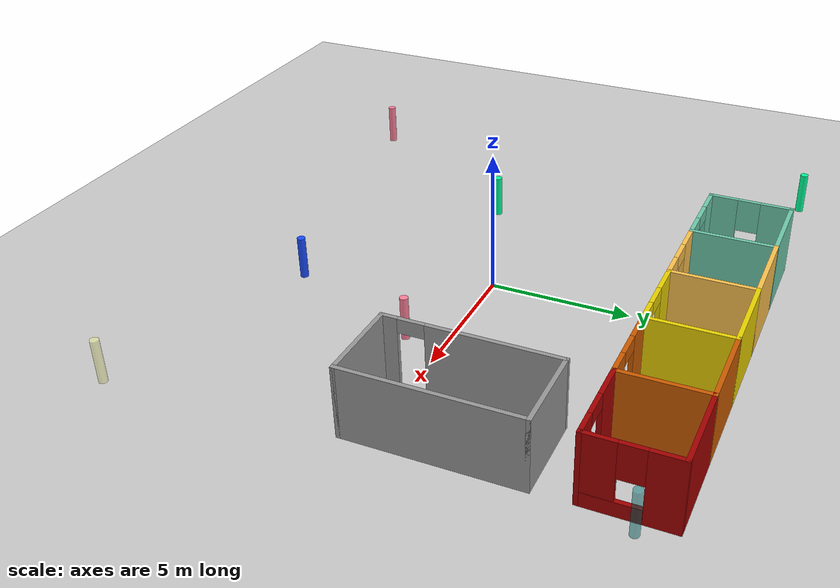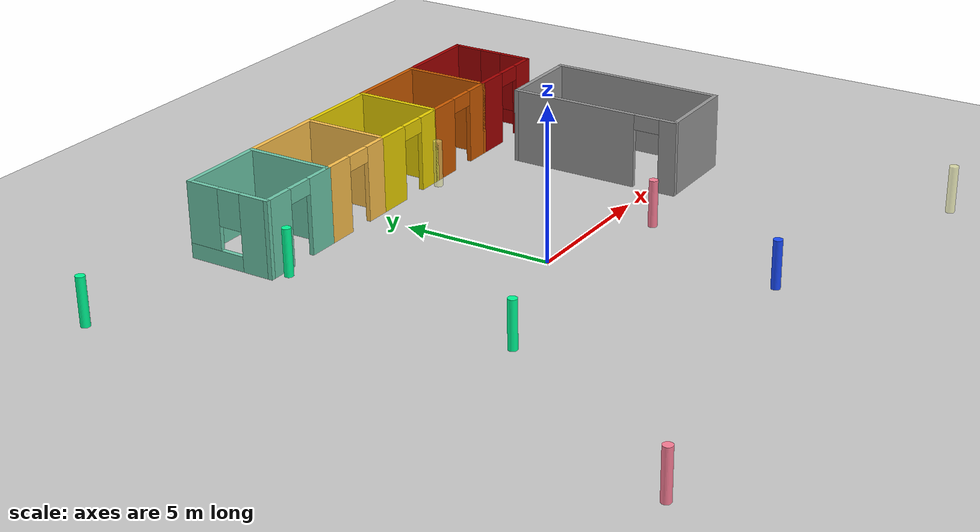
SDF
<sdf version="1.6">
 <world name="default">
  <model name="ground_plane">
   <static>1</static>
   <link name="link">
    <collision name="collision">
     <geometry><plane><normal>0 0 1</normal><size>100 100</size></plane></geometry>
     <surface><friction><ode><mu>100</mu><mu2>50</mu2></ode></friction></surface>
    </collision>
    <visual name="visual">
     <cast_shadows>0</cast_shadows>
     <geometry><plane><normal>0 0 1</normal><size>100 100</size></plane></geometry>
     <material>
      <script><uri>file://media/materials/scripts/gazebo.material</uri><name>Gazebo/Grey</name></script>
     </material>
    </visual>
   </link>
  </model>
  <model name="office_4">
   <pose>2.07237 8.39329 0 0 -0 0</pose>
   <link name="Wall_0">
    <collision name="Wall_0_Collision">
     <geometry><box><size>3 0.15 2.5</size></box></geometry>
     <pose>0 0 1.25 0 -0 0</pose>
    </collision>
    <visual name="Wall_0_Visual">
     <pose>0 0 1.25 0 -0 0</pose>
     <geometry><box><size>3 0.15 2.5</size></box></geometry>
     <material>
      <script><uri>file://media/materials/scripts/gazebo.material</uri><name>Gazebo/Grey</name></script>
      <ambient>0.435294 0.796078 0.67451 1</ambient>
     </material>
     <meta><layer>0</layer></meta>
    </visual>
    <pose>-5.7 0.8025 0 0 -0 0</pose>
   </link>
   <link name="Wall_1">
    <collision name="Wall_1_Collision">
     <geometry><box><size>3 0.15 2.5</size></box></geometry>
     <pose>0 0 1.25 0 -0 0</pose>
    </collision>
    <visual name="Wall_1_Visual">
     <pose>0 0 1.25 0 -0 0</pose>
     <geometry><box><size>3 0.15 2.5</size></box></geometry>
     <material>
      <script><uri>file://media/materials/scripts/gazebo.material</uri><name>Gazebo/Grey</name></script>
      <ambient>0.435294 0.796078 0.67451 1</ambient>
     </material>
     <meta><layer>0</layer></meta>
    </visual>
    <pose>-4.275 -0.6225 0 0 -0 -1.5708</pose>
   </link>
   <link name="Wall_10">
    <pose>5.7 -2.0475 0 0 -0 3.14159</pose>
    <visual name="Wall_10_Visual_0">
     <pose>-1.06469 0 1.25 0 -0 0</pose>
     <geometry><box><size>0.870623 0.15 2.5</size></box></geometry>
     <material>
      <script><uri>file://media/materials/scripts/gazebo.material</uri><name>Gazebo/Grey</name></script>
      <ambient>0.643137 0 0 1</ambient>
     </material>
     <meta><layer>0</layer></meta>
    </visual>
    <collision name="Wall_10_Collision_0">
     <geometry><box><size>0.870623 0.15 2.5</size></box></geometry>
     <pose>-1.06469 0 1.25 0 -0 0</pose>
    </collision>
    <visual name="Wall_10_Visual_1">
     <pose>0.885312 0 1.25 0 -0 0</pose>
     <geometry><box><size>1.22938 0.15 2.5</size></box></geometry>
     <material>
      <script><uri>file://media/materials/scripts/gazebo.material</uri><name>Gazebo/Grey</name></script>
      <ambient>0.643137 0 0 1</ambient>
     </material>
     <meta><layer>0</layer></meta>
    </visual>
    <collision name="Wall_10_Collision_1">
     <geometry><box><size>1.22938 0.15 2.5</size></box></geometry>
     <pose>0.885312 0 1.25 0 -0 0</pose>
    </collision>
    <visual name="Wall_10_Visual_2">
     <pose>-0.179377 0 2.25 0 -0 0</pose>
     <geometry><box><size>0.9 0.15 0.5</size></box></geometry>
     <material>
      <script><uri>file://media/materials/scripts/gazebo.material</uri><name>Gazebo/Grey</name></script>
      <ambient>0.643137 0 0 1</ambient>
     </material>
     <meta><layer>0</layer></meta>
    </visual>
    <collision name="Wall_10_Collision_2">
     <geometry><box><size>0.9 0.15 0.5</size></box></geometry>
     <pose>-0.179377 0 2.25 0 -0 0</pose>
    </collision>
   </link>
   <link name="Wall_12">
    <pose>0 -2.0475 0 0 -0 0</pose>
    <visual name="Wall_12_Visual_0">
     <pose>-0.909766 0 1.25 0 -0 0</pose>
     <geometry><box><size>1.18047 0.15 2.5</size></box></geometry>
     <material>
      <script><uri>file://media/materials/scripts/gazebo.material</uri><name>Gazebo/Grey</name></script>
      <ambient>0.929412 0.831373 0 1</ambient>
     </material>
     <meta><layer>0</layer></meta>
    </visual>
    <collision name="Wall_12_Collision_0">
     <geometry><box><size>1.18047 0.15 2.5</size></box></geometry>
     <pose>-0.909766 0 1.25 0 -0 0</pose>
    </collision>
    <visual name="Wall_12_Visual_1">
     <pose>1.04023 0 1.25 0 -0 0</pose>
     <geometry><box><size>0.919531 0.15 2.5</size></box></geometry>
     <material>
      <script><uri>file://media/materials/scripts/gazebo.material</uri><name>Gazebo/Grey</name></script>
      <ambient>0.929412 0.831373 0 1</ambient>
     </material>
     <meta><layer>0</layer></meta>
    </visual>
    <collision name="Wall_12_Collision_1">
     <geometry><box><size>0.919531 0.15 2.5</size></box></geometry>
     <pose>1.04023 0 1.25 0 -0 0</pose>
    </collision>
    <visual name="Wall_12_Visual_2">
     <pose>0.130469 0 2.25 0 -0 0</pose>
     <geometry><box><size>0.9 0.15 0.5</size></box></geometry>
     <material>
      <script><uri>file://media/materials/scripts/gazebo.material</uri><name>Gazebo/Grey</name></script>
      <ambient>0.929412 0.831373 0 1</ambient>
     </material>
     <meta><layer>0</layer></meta>
    </visual>
    <collision name="Wall_12_Collision_2">
     <geometry><box><size>0.9 0.15 0.5</size></box></geometry>
     <pose>0.130469 0 2.25 0 -0 0</pose>
    </collision>
   </link>
   <link name="Wall_14">
    <collision name="Wall_14_Collision">
     <geometry><box><size>3 0.15 2.5</size></box></geometry>
     <pose>0 0 1.25 0 -0 0</pose>
    </collision>
    <visual name="Wall_14_Visual">
     <pose>0 0 1.25 0 -0 0</pose>
     <geometry><box><size>3 0.15 2.5</size></box></geometry>
     <material>
      <script><uri>file://media/materials/scripts/gazebo.material</uri><name>Gazebo/Grey</name></script>
      <ambient>0.807843 0.360784 0 1</ambient>
     </material>
     <meta><layer>0</layer></meta>
    </visual>
    <pose>2.85 0.8025 0 0 -0 0</pose>
   </link>
   <link name="Wall_16">
    <collision name="Wall_16_Collision">
     <geometry><box><size>3 0.15 2.5</size></box></geometry>
     <pose>0 0 1.25 0 -0 0</pose>
    </collision>
    <visual name="Wall_16_Visual">
     <pose>0 0 1.25 0 -0 0</pose>
     <geometry><box><size>3 0.15 2.5</size></box></geometry>
     <material>
      <script><uri>file://media/materials/scripts/gazebo.material</uri><name>Gazebo/Grey</name></script>
      <ambient>1 0.764706 0.305882 1</ambient>
     </material>
     <meta><layer>0</layer></meta>
    </visual>
    <pose>-2.85 0.8025 0 0 -0 0</pose>
   </link>
   <link name="Wall_18">
    <pose>-5.7 -2.0475 0 0 -0 3.14159</pose>
    <visual name="Wall_18_Visual_0">
     <pose>-0.992968 0 1.25 0 -0 0</pose>
     <geometry><box><size>1.01406 0.15 2.5</size></box></geometry>
     <material>
      <script><uri>file://media/materials/scripts/gazebo.material</uri><name>Gazebo/Grey</name></script>
      <ambient>0.435294 0.796078 0.67451 1</ambient>
     </material>
     <meta><layer>0</layer></meta>
    </visual>
    <collision name="Wall_18_Collision_0">
     <geometry><box><size>1.01406 0.15 2.5</size></box></geometry>
     <pose>-0.992968 0 1.25 0 -0 0</pose>
    </collision>
    <visual name="Wall_18_Visual_1">
     <pose>0.957032 0 1.25 0 -0 0</pose>
     <geometry><box><size>1.08594 0.15 2.5</size></box></geometry>
     <material>
      <script><uri>file://media/materials/scripts/gazebo.material</uri><name>Gazebo/Grey</name></script>
      <ambient>0.435294 0.796078 0.67451 1</ambient>
     </material>
     <meta><layer>0</layer></meta>
    </visual>
    <collision name="Wall_18_Collision_1">
     <geometry><box><size>1.08594 0.15 2.5</size></box></geometry>
     <pose>0.957032 0 1.25 0 -0 0</pose>
    </collision>
    <visual name="Wall_18_Visual_2">
     <pose>-0.035935 0 2.25 0 -0 0</pose>
     <geometry><box><size>0.9 0.15 0.5</size></box></geometry>
     <material>
      <script><uri>file://media/materials/scripts/gazebo.material</uri><name>Gazebo/Grey</name></script>
      <ambient>0.435294 0.796078 0.67451 1</ambient>
     </material>
     <meta><layer>0</layer></meta>
    </visual>
    <collision name="Wall_18_Collision_2">
     <geometry><box><size>0.9 0.15 0.5</size></box></geometry>
     <pose>-0.035935 0 2.25 0 -0 0</pose>
    </collision>
   </link>
   <link name="Wall_19">
    <pose>-7.125 -0.6225 0 0 -0 1.5708</pose>
    <visual name="Wall_19_Visual_0">
     <pose>-0.974081 0 1.25 0 -0 0</pose>
     <geometry><box><size>1.05184 0.15 2.5</size></box></geometry>
     <material>
      <script><uri>file://media/materials/scripts/gazebo.material</uri><name>Gazebo/Grey</name></script>
      <ambient>0.435294 0.796078 0.67451 1</ambient>
     </material>
     <meta><layer>0</layer></meta>
    </visual>
    <collision name="Wall_19_Collision_0">
     <geometry><box><size>1.05184 0.15 2.5</size></box></geometry>
     <pose>-0.974081 0 1.25 0 -0 0</pose>
    </collision>
    <visual name="Wall_19_Visual_1">
     <pose>0.525919 0 0.25 0 -0 0</pose>
     <geometry><box><size>1.94816 0.15 0.5</size></box></geometry>
     <material>
      <script><uri>file://media/materials/scripts/gazebo.material</uri><name>Gazebo/Grey</name></script>
      <ambient>0.435294 0.796078 0.67451 1</ambient>
     </material>
     <meta><layer>0</layer></meta>
    </visual>
    <collision name="Wall_19_Collision_1">
     <geometry><box><size>1.94816 0.15 0.5</size></box></geometry>
     <pose>0.525919 0 0.25 0 -0 0</pose>
    </collision>
    <visual name="Wall_19_Visual_2">
     <pose>0.925919 0 1.5 0 -0 0</pose>
     <geometry><box><size>1.14816 0.15 2</size></box></geometry>
     <material>
      <script><uri>file://media/materials/scripts/gazebo.material</uri><name>Gazebo/Grey</name></script>
      <ambient>0.435294 0.796078 0.67451 1</ambient>
     </material>
     <meta><layer>0</layer></meta>
    </visual>
    <collision name="Wall_19_Collision_2">
     <geometry><box><size>1.14816 0.15 2</size></box></geometry>
     <pose>0.925919 0 1.5 0 -0 0</pose>
    </collision>
    <visual name="Wall_19_Visual_3">
     <pose>-0.048161 0 1.9 0 -0 0</pose>
     <geometry><box><size>0.8 0.15 1.2</size></box></geometry>
     <material>
      <script><uri>file://media/materials/scripts/gazebo.material</uri><name>Gazebo/Grey</name></script>
      <ambient>0.435294 0.796078 0.67451 1</ambient>
     </material>
     <meta><layer>0</layer></meta>
    </visual>
    <collision name="Wall_19_Collision_3">
     <geometry><box><size>0.8 0.15 1.2</size></box></geometry>
     <pose>-0.048161 0 1.9 0 -0 0</pose>
    </collision>
   </link>
   <link name="Wall_2">
    <pose>-2.85 -2.0475 0 0 -0 0</pose>
    <visual name="Wall_2_Visual_0">
     <pose>-0.937201 0 1.25 0 -0 0</pose>
     <geometry><box><size>1.1256 0.15 2.5</size></box></geometry>
     <material>
      <script><uri>file://media/materials/scripts/gazebo.material</uri><name>Gazebo/Grey</name></script>
      <ambient>1 0.764706 0.305882 1</ambient>
     </material>
     <meta><layer>0</layer></meta>
    </visual>
    <collision name="Wall_2_Collision_0">
     <geometry><box><size>1.1256 0.15 2.5</size></box></geometry>
     <pose>-0.937201 0 1.25 0 -0 0</pose>
    </collision>
    <visual name="Wall_2_Visual_1">
     <pose>1.0128 0 1.25 0 -0 0</pose>
     <geometry><box><size>0.974402 0.15 2.5</size></box></geometry>
     <material>
      <script><uri>file://media/materials/scripts/gazebo.material</uri><name>Gazebo/Grey</name></script>
      <ambient>1 0.764706 0.305882 1</ambient>
     </material>
     <meta><layer>0</layer></meta>
    </visual>
    <collision name="Wall_2_Collision_1">
     <geometry><box><size>0.974402 0.15 2.5</size></box></geometry>
     <pose>1.0128 0 1.25 0 -0 0</pose>
    </collision>
    <visual name="Wall_2_Visual_2">
     <pose>0.075598 0 2.25 0 -0 0</pose>
     <geometry><box><size>0.9 0.15 0.5</size></box></geometry>
     <material>
      <script><uri>file://media/materials/scripts/gazebo.material</uri><name>Gazebo/Grey</name></script>
      <ambient>1 0.764706 0.305882 1</ambient>
     </material>
     <meta><layer>0</layer></meta>
    </visual>
    <collision name="Wall_2_Collision_2">
     <geometry><box><size>0.9 0.15 0.5</size></box></geometry>
     <pose>0.075598 0 2.25 0 -0 0</pose>
    </collision>
   </link>
   <link name="Wall_3">
    <collision name="Wall_3_Collision">
     <geometry><box><size>3 0.15 2.5</size></box></geometry>
     <pose>0 0 1.25 0 -0 0</pose>
    </collision>
    <visual name="Wall_3_Visual">
     <pose>0 0 1.25 0 -0 0</pose>
     <geometry><box><size>3 0.15 2.5</size></box></geometry>
     <material>
      <script><uri>file://media/materials/scripts/gazebo.material</uri><name>Gazebo/Grey</name></script>
      <ambient>1 0.764706 0.305882 1</ambient>
     </material>
     <meta><layer>0</layer></meta>
    </visual>
    <pose>-1.425 -0.6225 0 0 -0 1.5708</pose>
   </link>
   <link name="Wall_4">
    <collision name="Wall_4_Collision">
     <geometry><box><size>3 0.15 2.5</size></box></geometry>
     <pose>0 0 1.25 0 -0 0</pose>
    </collision>
    <visual name="Wall_4_Visual">
     <pose>0 0 1.25 0 -0 0</pose>
     <geometry><box><size>3 0.15 2.5</size></box></geometry>
     <material>
      <script><uri>file://media/materials/scripts/gazebo.material</uri><name>Gazebo/Grey</name></script>
      <ambient>0.929412 0.831373 0 1</ambient>
     </material>
     <meta><layer>0</layer></meta>
    </visual>
    <pose>0 0.8025 0 0 -0 0</pose>
   </link>
   <link name="Wall_5">
    <collision name="Wall_5_Collision">
     <geometry><box><size>3 0.15 2.5</size></box></geometry>
     <pose>0 0 1.25 0 -0 0</pose>
    </collision>
    <visual name="Wall_5_Visual">
     <pose>0 0 1.25 0 -0 0</pose>
     <geometry><box><size>3 0.15 2.5</size></box></geometry>
     <material>
      <script><uri>file://media/materials/scripts/gazebo.material</uri><name>Gazebo/Grey</name></script>
      <ambient>0.929412 0.831373 0 1</ambient>
     </material>
     <meta><layer>0</layer></meta>
    </visual>
    <pose>1.425 -0.6225 0 0 -0 -1.5708</pose>
   </link>
   <link name="Wall_6">
    <pose>2.85 -2.0475 0 0 -0 0</pose>
    <visual name="Wall_6_Visual_0">
     <pose>-0.920352 0 1.25 0 -0 0</pose>
     <geometry><box><size>1.1593 0.15 2.5</size></box></geometry>
     <material>
      <script><uri>file://media/materials/scripts/gazebo.material</uri><name>Gazebo/Grey</name></script>
      <ambient>0.807843 0.360784 0 1</ambient>
     </material>
     <meta><layer>0</layer></meta>
    </visual>
    <collision name="Wall_6_Collision_0">
     <geometry><box><size>1.1593 0.15 2.5</size></box></geometry>
     <pose>-0.920352 0 1.25 0 -0 0</pose>
    </collision>
    <visual name="Wall_6_Visual_1">
     <pose>1.02965 0 1.25 0 -0 0</pose>
     <geometry><box><size>0.940704 0.15 2.5</size></box></geometry>
     <material>
      <script><uri>file://media/materials/scripts/gazebo.material</uri><name>Gazebo/Grey</name></script>
      <ambient>0.807843 0.360784 0 1</ambient>
     </material>
     <meta><layer>0</layer></meta>
    </visual>
    <collision name="Wall_6_Collision_1">
     <geometry><box><size>0.940704 0.15 2.5</size></box></geometry>
     <pose>1.02965 0 1.25 0 -0 0</pose>
    </collision>
    <visual name="Wall_6_Visual_2">
     <pose>0.109296 0 2.25 0 -0 0</pose>
     <geometry><box><size>0.9 0.15 0.5</size></box></geometry>
     <material>
      <script><uri>file://media/materials/scripts/gazebo.material</uri><name>Gazebo/Grey</name></script>
      <ambient>0.807843 0.360784 0 1</ambient>
     </material>
     <meta><layer>0</layer></meta>
    </visual>
    <collision name="Wall_6_Collision_2">
     <geometry><box><size>0.9 0.15 0.5</size></box></geometry>
     <pose>0.109296 0 2.25 0 -0 0</pose>
    </collision>
   </link>
   <link name="Wall_7">
    <collision name="Wall_7_Collision">
     <geometry><box><size>3 0.15 2.5</size></box></geometry>
     <pose>0 0 1.25 0 -0 0</pose>
    </collision>
    <visual name="Wall_7_Visual">
     <pose>0 0 1.25 0 -0 0</pose>
     <geometry><box><size>3 0.15 2.5</size></box></geometry>
     <material>
      <script><uri>file://media/materials/scripts/gazebo.material</uri><name>Gazebo/Grey</name></script>
      <ambient>0.807843 0.360784 0 1</ambient>
     </material>
     <meta><layer>0</layer></meta>
    </visual>
    <pose>4.275 -0.6225 0 0 -0 1.5708</pose>
   </link>
   <link name="Wall_8">
    <collision name="Wall_8_Collision">
     <geometry><box><size>3 0.15 2.5</size></box></geometry>
     <pose>0 0 1.25 0 -0 0</pose>
    </collision>
    <visual name="Wall_8_Visual">
     <pose>0 0 1.25 0 -0 0</pose>
     <geometry><box><size>3 0.15 2.5</size></box></geometry>
     <material>
      <script><uri>file://media/materials/scripts/gazebo.material</uri><name>Gazebo/Grey</name></script>
      <ambient>0.643137 0 0 1</ambient>
     </material>
     <meta><layer>0</layer></meta>
    </visual>
    <pose>5.7 0.8025 0 0 -0 0</pose>
   </link>
   <link name="Wall_9">
    <pose>7.125 -0.6225 0 0 -0 -1.5708</pose>
    <visual name="Wall_9_Visual_0">
     <pose>-0.956337 0 1.25 0 -0 0</pose>
     <geometry><box><size>1.08733 0.15 2.5</size></box></geometry>
     <material>
      <script><uri>file://media/materials/scripts/gazebo.material</uri><name>Gazebo/Grey</name></script>
      <ambient>0.643137 0 0 1</ambient>
     </material>
     <meta><layer>0</layer></meta>
    </visual>
    <collision name="Wall_9_Collision_0">
     <geometry><box><size>1.08733 0.15 2.5</size></box></geometry>
     <pose>-0.956337 0 1.25 0 -0 0</pose>
    </collision>
    <visual name="Wall_9_Visual_1">
     <pose>0.543663 0 0.25 0 -0 0</pose>
     <geometry><box><size>1.91267 0.15 0.5</size></box></geometry>
     <material>
      <script><uri>file://media/materials/scripts/gazebo.material</uri><name>Gazebo/Grey</name></script>
      <ambient>0.643137 0 0 1</ambient>
     </material>
     <meta><layer>0</layer></meta>
    </visual>
    <collision name="Wall_9_Collision_1">
     <geometry><box><size>1.91267 0.15 0.5</size></box></geometry>
     <pose>0.543663 0 0.25 0 -0 0</pose>
    </collision>
    <visual name="Wall_9_Visual_2">
     <pose>0.943663 0 1.5 0 -0 0</pose>
     <geometry><box><size>1.11267 0.15 2</size></box></geometry>
     <material>
      <script><uri>file://media/materials/scripts/gazebo.material</uri><name>Gazebo/Grey</name></script>
      <ambient>0.643137 0 0 1</ambient>
     </material>
     <meta><layer>0</layer></meta>
    </visual>
    <collision name="Wall_9_Collision_2">
     <geometry><box><size>1.11267 0.15 2</size></box></geometry>
     <pose>0.943663 0 1.5 0 -0 0</pose>
    </collision>
    <visual name="Wall_9_Visual_3">
     <pose>-0.012674 0 1.9 0 -0 0</pose>
     <geometry><box><size>0.8 0.15 1.2</size></box></geometry>
     <material>
      <script><uri>file://media/materials/scripts/gazebo.material</uri><name>Gazebo/Grey</name></script>
      <ambient>0.643137 0 0 1</ambient>
     </material>
     <meta><layer>0</layer></meta>
    </visual>
    <collision name="Wall_9_Collision_3">
     <geometry><box><size>0.8 0.15 1.2</size></box></geometry>
     <pose>-0.012674 0 1.9 0 -0 0</pose>
    </collision>
   </link>
   <static>1</static>
  </model>
  <model name="office2_1">
   <pose>7.1793 2.06075 0 0 -0 1.57282</pose>
   <link name="Wall_1">
    <collision name="Wall_1_Collision">
     <geometry><box><size>6 0.15 2.5</size></box></geometry>
     <pose>0 0 1.25 0 -0 0</pose>
    </collision>
    <visual name="Wall_1_Visual">
     <pose>0 0 1.25 0 -0 0</pose>
     <geometry><box><size>6 0.15 2.5</size></box></geometry>
     <material>
      <script><uri>file://media/materials/scripts/gazebo.material</uri><name>Gazebo/Grey</name></script>
      <ambient>1 1 1 1</ambient>
     </material>
     <meta><layer>0</layer></meta>
    </visual>
    <pose>0 -2.0825 0 0 -0 0</pose>
   </link>
   <link name="Wall_2">
    <collision name="Wall_2_Collision">
     <geometry><box><size>3 0.15 2.5</size></box></geometry>
     <pose>0 0 1.25 0 -0 0</pose>
    </collision>
    <visual name="Wall_2_Visual">
     <pose>0 0 1.25 0 -0 0</pose>
     <geometry><box><size>3 0.15 2.5</size></box></geometry>
     <material>
      <script><uri>file://media/materials/scripts/gazebo.material</uri><name>Gazebo/Grey</name></script>
      <ambient>1 1 1 1</ambient>
     </material>
     <meta><layer>0</layer></meta>
    </visual>
    <pose>2.925 -0.6575 0 0 -0 1.5708</pose>
   </link>
   <link name="Wall_3">
    <pose>0 0.7675 0 0 -0 3.14159</pose>
    <visual name="Wall_3_Visual_0">
     <pose>-0.7575 0 1.25 0 -0 0</pose>
     <geometry><box><size>4.485 0.15 2.5</size></box></geometry>
     <material>
      <script><uri>file://media/materials/scripts/gazebo.material</uri><name>Gazebo/Grey</name></script>
      <ambient>1 1 1 1</ambient>
     </material>
     <meta><layer>0</layer></meta>
    </visual>
    <collision name="Wall_3_Collision_0">
     <geometry><box><size>4.485 0.15 2.5</size></box></geometry>
     <pose>-0.7575 0 1.25 0 -0 0</pose>
    </collision>
    <visual name="Wall_3_Visual_1">
     <pose>2.6925 0 1.25 0 -0 0</pose>
     <geometry><box><size>0.615 0.15 2.5</size></box></geometry>
     <material>
      <script><uri>file://media/materials/scripts/gazebo.material</uri><name>Gazebo/Grey</name></script>
      <ambient>1 1 1 1</ambient>
     </material>
     <meta><layer>0</layer></meta>
    </visual>
    <collision name="Wall_3_Collision_1">
     <geometry><box><size>0.615 0.15 2.5</size></box></geometry>
     <pose>2.6925 0 1.25 0 -0 0</pose>
    </collision>
    <visual name="Wall_3_Visual_2">
     <pose>1.935 0 2.25 0 -0 0</pose>
     <geometry><box><size>0.9 0.15 0.5</size></box></geometry>
     <material>
      <script><uri>file://media/materials/scripts/gazebo.material</uri><name>Gazebo/Grey</name></script>
      <ambient>1 1 1 1</ambient>
     </material>
     <meta><layer>0</layer></meta>
    </visual>
    <collision name="Wall_3_Collision_2">
     <geometry><box><size>0.9 0.15 0.5</size></box></geometry>
     <pose>1.935 0 2.25 0 -0 0</pose>
    </collision>
   </link>
   <link name="Wall_4">
    <collision name="Wall_4_Collision">
     <geometry><box><size>3 0.15 2.5</size></box></geometry>
     <pose>0 0 1.25 0 -0 0</pose>
    </collision>
    <visual name="Wall_4_Visual">
     <pose>0 0 1.25 0 -0 0</pose>
     <geometry><box><size>3 0.15 2.5</size></box></geometry>
     <material>
      <script><uri>file://media/materials/scripts/gazebo.material</uri><name>Gazebo/Grey</name></script>
      <ambient>1 1 1 1</ambient>
     </material>
     <meta><layer>0</layer></meta>
    </visual>
    <pose>-2.925 -0.6575 0 0 -0 -1.5708</pose>
   </link>
   <static>1</static>
  </model>
  <model name="column">
   <link name="link">
    <pose>0.349547 -0.833341 0.176042 0 -0 0</pose>
    <inertial>
     <mass>0.145554</mass>
     <inertia>
      <ixx>0.0358698</ixx>
      <ixy>0</ixy>
      <ixz>0</ixz>
      <iyy>0.0358698</iyy>
      <iyz>0</iyz>
      <izz>0.00155704</izz>
     </inertia>
    </inertial>
    <visual name="visual">
     <geometry><cylinder><radius>0.146269</radius><length>1.7009</length></cylinder></geometry>
     <material>
      <script><name>Gazebo/Grey</name><uri>file://media/materials/scripts/gazebo.material</uri></script>
      <shader type="pixel"><normal_map>__default__</normal_map></shader>
      <ambient>1 0.5 0.6 1</ambient>
      <diffuse>0.7 0.7 0.7 1</diffuse>
      <specular>0.01 0.01 0.01 1</specular>
      <emissive>0 0 0 1</emissive>
     </material>
    </visual>
    <collision name="collision">
     <geometry><cylinder><radius>0.146269</radius><length>1.7009</length></cylinder></geometry>
     <surface>
      <friction>
       <ode><mu>1</mu><mu2>1</mu2><fdir1>0 0 0</fdir1><slip1>0</slip1><slip2>0</slip2></ode>
       <torsional>
        <coefficient>1</coefficient>
        <patch_radius>0</patch_radius>
        <surface_radius>0</surface_radius>
        <use_patch_radius>1</use_patch_radius>
        <ode><slip>0</slip></ode>
       </torsional>
      </friction>
      <bounce><restitution_coefficient>0</restitution_coefficient><threshold>1e+06</threshold></bounce>
      <contact>
       <collide_without_contact>0</collide_without_contact>
       <collide_without_contact_bitmask>1</collide_without_contact_bitmask>
       <collide_bitmask>1</collide_bitmask>
       <ode>
        <soft_cfm>0</soft_cfm>
        <soft_erp>0.2</soft_erp>
        <kp>1e+13</kp>
        <kd>1</kd>
        <max_vel>0.01</max_vel>
        <min_depth>0</min_depth>
       </ode>
       <bullet>
        <split_impulse>1</split_impulse>
        <split_impulse_penetration_threshold>-0.01</split_impulse_penetration_threshold>
        <soft_cfm>0</soft_cfm>
        <soft_erp>0.2</soft_erp>
        <kp>1e+13</kp>
        <kd>1</kd>
       </bullet>
      </contact>
     </surface>
    </collision>
   </link>
   <link name="link_clone">
    <pose>-8.75389 -1.38512 0.176042 0 -0 0</pose>
    <inertial>
     <mass>0.145554</mass>
     <inertia>
      <ixx>0.0358698</ixx>
      <ixy>0</ixy>
      <ixz>0</ixz>
      <iyy>0.0358698</iyy>
      <iyz>0</iyz>
      <izz>0.00155704</izz>
     </inertia>
    </inertial>
    <visual name="visual">
     <geometry><cylinder><radius>0.146269</radius><length>1.7009</length></cylinder></geometry>
     <material>
      <script><name>Gazebo/Grey</name><uri>file://media/materials/scripts/gazebo.material</uri></script>
      <shader type="pixel"><normal_map>__default__</normal_map></shader>
      <ambient>0 1 0.6 1</ambient>
      <diffuse>0.7 0.7 0.7 1</diffuse>
      <specular>0.01 0.01 0.01 1</specular>
      <emissive>0 0 0 1</emissive>
     </material>
    </visual>
    <collision name="collision">
     <geometry><cylinder><radius>0.146269</radius><length>1.7009</length></cylinder></geometry>
     <surface>
      <friction>
       <ode><mu>1</mu><mu2>1</mu2><fdir1>0 0 0</fdir1><slip1>0</slip1><slip2>0</slip2></ode>
       <torsional>
        <coefficient>1</coefficient>
        <patch_radius>0</patch_radius>
        <surface_radius>0</surface_radius>
        <use_patch_radius>1</use_patch_radius>
        <ode><slip>0</slip></ode>
       </torsional>
      </friction>
      <bounce><restitution_coefficient>0</restitution_coefficient><threshold>1e+06</threshold></bounce>
      <contact>
       <collide_without_contact>0</collide_without_contact>
       <collide_without_contact_bitmask>1</collide_without_contact_bitmask>
       <collide_bitmask>1</collide_bitmask>
       <ode>
        <soft_cfm>0</soft_cfm>
        <soft_erp>0.2</soft_erp>
        <kp>1e+13</kp>
        <kd>1</kd>
        <max_vel>0.01</max_vel>
        <min_depth>0</min_depth>
       </ode>
       <bullet>
        <split_impulse>1</split_impulse>
        <split_impulse_penetration_threshold>-0.01</split_impulse_penetration_threshold>
        <soft_cfm>0</soft_cfm>
        <soft_erp>0.2</soft_erp>
        <kp>1e+13</kp>
        <kd>1</kd>
       </bullet>
      </contact>
     </surface>
    </collision>
   </link>
   <link name="link_clone_0">
    <pose>-13.3207 -8.44434 0.176042 0 -0 0</pose>
    <inertial>
     <mass>0.145554</mass>
     <inertia>
      <ixx>0.0358698</ixx>
      <ixy>0</ixy>
      <ixz>0</ixz>
      <iyy>0.0358698</iyy>
      <iyz>0</iyz>
      <izz>0.00155704</izz>
     </inertia>
    </inertial>
    <visual name="visual">
     <geometry><cylinder><radius>0.146269</radius><length>1.7009</length></cylinder></geometry>
     <material>
      <script><name>Gazebo/Grey</name><uri>file://media/materials/scripts/gazebo.material</uri></script>
      <shader type="pixel"><normal_map>__default__</normal_map></shader>
      <ambient>1 0.5 0.6 1</ambient>
      <diffuse>0.7 0.7 0.7 1</diffuse>
      <specular>0.01 0.01 0.01 1</specular>
      <emissive>0 0 0 1</emissive>
     </material>
    </visual>
    <collision name="collision">
     <geometry><cylinder><radius>0.146269</radius><length>1.7009</length></cylinder></geometry>
     <surface>
      <friction>
       <ode><mu>1</mu><mu2>1</mu2><fdir1>0 0 0</fdir1><slip1>0</slip1><slip2>0</slip2></ode>
       <torsional>
        <coefficient>1</coefficient>
        <patch_radius>0</patch_radius>
        <surface_radius>0</surface_radius>
        <use_patch_radius>1</use_patch_radius>
        <ode><slip>0</slip></ode>
       </torsional>
      </friction>
      <bounce><restitution_coefficient>0</restitution_coefficient><threshold>1e+06</threshold></bounce>
      <contact>
       <collide_without_contact>0</collide_without_contact>
       <collide_without_contact_bitmask>1</collide_without_contact_bitmask>
       <collide_bitmask>1</collide_bitmask>
       <ode>
        <soft_cfm>0</soft_cfm>
        <soft_erp>0.2</soft_erp>
        <kp>1e+13</kp>
        <kd>1</kd>
        <max_vel>0.01</max_vel>
        <min_depth>0</min_depth>
       </ode>
       <bullet>
        <split_impulse>1</split_impulse>
        <split_impulse_penetration_threshold>-0.01</split_impulse_penetration_threshold>
        <soft_cfm>0</soft_cfm>
        <soft_erp>0.2</soft_erp>
        <kp>1e+13</kp>
        <kd>1</kd>
       </bullet>
      </contact>
     </surface>
    </collision>
   </link>
   <link name="link_clone_1">
    <pose>5.98284 8.67618 0.176042 0 -0 0</pose>
    <inertial>
     <mass>0.145554</mass>
     <inertia>
      <ixx>0.0358698</ixx>
      <ixy>0</ixy>
      <ixz>0</ixz>
      <iyy>0.0358698</iyy>
      <iyz>0</iyz>
      <izz>0.00155704</izz>
     </inertia>
    </inertial>
    <visual name="visual">
     <geometry><cylinder><radius>0.146269</radius><length>1.7009</length></cylinder></geometry>
     <material>
      <script><name>Gazebo/Grey</name><uri>file://media/materials/scripts/gazebo.material</uri></script>
      <shader type="pixel"><normal_map>__default__</normal_map></shader>
      <ambient>1 1 1 1</ambient>
      <diffuse>0 0.5 0.5 0.5</diffuse>
      <specular>0 0 1 1</specular>
      <emissive>1 0 0 1</emissive>
     </material>
    </visual>
    <collision name="collision">
     <geometry><cylinder><radius>0.146269</radius><length>1.7009</length></cylinder></geometry>
     <surface>
      <friction>
       <ode><mu>1</mu><mu2>1</mu2><fdir1>0 0 0</fdir1><slip1>0</slip1><slip2>0</slip2></ode>
       <torsional>
        <coefficient>1</coefficient>
        <patch_radius>0</patch_radius>
        <surface_radius>0</surface_radius>
        <use_patch_radius>1</use_patch_radius>
        <ode><slip>0</slip></ode>
       </torsional>
      </friction>
      <bounce><restitution_coefficient>0</restitution_coefficient><threshold>1e+06</threshold></bounce>
      <contact>
       <collide_without_contact>0</collide_without_contact>
       <collide_without_contact_bitmask>1</collide_without_contact_bitmask>
       <collide_bitmask>1</collide_bitmask>
       <ode>
        <soft_cfm>0</soft_cfm>
        <soft_erp>0.2</soft_erp>
        <kp>1e+13</kp>
        <kd>1</kd>
        <max_vel>0.01</max_vel>
        <min_depth>0</min_depth>
       </ode>
       <bullet>
        <split_impulse>1</split_impulse>
        <split_impulse_penetration_threshold>-0.01</split_impulse_penetration_threshold>
        <soft_cfm>0</soft_cfm>
        <soft_erp>0.2</soft_erp>
        <kp>1e+13</kp>
        <kd>1</kd>
       </bullet>
      </contact>
     </surface>
    </collision>
   </link>
   <link name="link_clone_clone">
    <pose>-1.67833 -5.92814 0.176042 0 -0 0</pose>
    <inertial>
     <mass>0.145554</mass>
     <inertia>
      <ixx>0.0358698</ixx>
      <ixy>0</ixy>
      <ixz>0</ixz>
      <iyy>0.0358698</iyy>
      <iyz>0</iyz>
      <izz>0.00155704</izz>
     </inertia>
    </inertial>
    <visual name="visual">
     <geometry><cylinder><radius>0.146269</radius><length>1.7009</length></cylinder></geometry>
     <material>
      <script><name>Gazebo/Grey</name><uri>file://media/materials/scripts/gazebo.material</uri></script>
      <shader type="pixel"><normal_map>__default__</normal_map></shader>
      <ambient>0.1 0.3 1 1</ambient>
      <diffuse>0.7 0.7 0.7 1</diffuse>
      <specular>0.01 0.01 0.01 1</specular>
      <emissive>0 0 0 1</emissive>
     </material>
    </visual>
    <collision name="collision">
     <geometry><cylinder><radius>0.146269</radius><length>1.7009</length></cylinder></geometry>
     <surface>
      <friction>
       <ode><mu>1</mu><mu2>1</mu2><fdir1>0 0 0</fdir1><slip1>0</slip1><slip2>0</slip2></ode>
       <torsional>
        <coefficient>1</coefficient>
        <patch_radius>0</patch_radius>
        <surface_radius>0</surface_radius>
        <use_patch_radius>1</use_patch_radius>
        <ode><slip>0</slip></ode>
       </torsional>
      </friction>
      <bounce><restitution_coefficient>0</restitution_coefficient><threshold>1e+06</threshold></bounce>
      <contact>
       <collide_without_contact>0</collide_without_contact>
       <collide_without_contact_bitmask>1</collide_without_contact_bitmask>
       <collide_bitmask>1</collide_bitmask>
       <ode>
        <soft_cfm>0</soft_cfm>
        <soft_erp>0.2</soft_erp>
        <kp>1e+13</kp>
        <kd>1</kd>
        <max_vel>0.01</max_vel>
        <min_depth>0</min_depth>
       </ode>
       <bullet>
        <split_impulse>1</split_impulse>
        <split_impulse_penetration_threshold>-0.01</split_impulse_penetration_threshold>
        <soft_cfm>0</soft_cfm>
        <soft_erp>0.2</soft_erp>
        <kp>1e+13</kp>
        <kd>1</kd>
       </bullet>
      </contact>
     </surface>
    </collision>
   </link>
   <link name="link_clone_clone_0">
    <pose>-8.25338 6.63945 0.176042 0 -0 0</pose>
    <inertial>
     <mass>0.145554</mass>
     <inertia>
      <ixx>0.0358698</ixx>
      <ixy>0</ixy>
      <ixz>0</ixz>
      <iyy>0.0358698</iyy>
      <iyz>0</iyz>
      <izz>0.00155704</izz>
     </inertia>
    </inertial>
    <visual name="visual">
     <geometry><cylinder><radius>0.146269</radius><length>1.7009</length></cylinder></geometry>
     <material>
      <script><name>Gazebo/Grey</name><uri>file://media/materials/scripts/gazebo.material</uri></script>
      <shader type="pixel"><normal_map>__default__</normal_map></shader>
      <ambient>0 1 0.6 1</ambient>
      <diffuse>0.7 0.7 0.7 1</diffuse>
      <specular>0.01 0.01 0.01 1</specular>
      <emissive>0 0 0 1</emissive>
     </material>
    </visual>
    <collision name="collision">
     <geometry><cylinder><radius>0.146269</radius><length>1.7009</length></cylinder></geometry>
     <surface>
      <friction>
       <ode><mu>1</mu><mu2>1</mu2><fdir1>0 0 0</fdir1><slip1>0</slip1><slip2>0</slip2></ode>
       <torsional>
        <coefficient>1</coefficient>
        <patch_radius>0</patch_radius>
        <surface_radius>0</surface_radius>
        <use_patch_radius>1</use_patch_radius>
        <ode><slip>0</slip></ode>
       </torsional>
      </friction>
      <bounce><restitution_coefficient>0</restitution_coefficient><threshold>1e+06</threshold></bounce>
      <contact>
       <collide_without_contact>0</collide_without_contact>
       <collide_without_contact_bitmask>1</collide_without_contact_bitmask>
       <collide_bitmask>1</collide_bitmask>
       <ode>
        <soft_cfm>0</soft_cfm>
        <soft_erp>0.2</soft_erp>
        <kp>1e+13</kp>
        <kd>1</kd>
        <max_vel>0.01</max_vel>
        <min_depth>0</min_depth>
       </ode>
       <bullet>
        <split_impulse>1</split_impulse>
        <split_impulse_penetration_threshold>-0.01</split_impulse_penetration_threshold>
        <soft_cfm>0</soft_cfm>
        <soft_erp>0.2</soft_erp>
        <kp>1e+13</kp>
        <kd>1</kd>
       </bullet>
      </contact>
     </surface>
    </collision>
   </link>
   <link name="link_clone_clone_0_clone">
    <pose>-13.6819 9.51066 0.176042 0 -0 0</pose>
    <inertial>
     <mass>0.145554</mass>
     <inertia>
      <ixx>0.0358698</ixx>
      <ixy>0</ixy>
      <ixz>0</ixz>
      <iyy>0.0358698</iyy>
      <iyz>0</iyz>
      <izz>0.00155704</izz>
     </inertia>
    </inertial>
    <visual name="visual">
     <geometry><cylinder><radius>0.146269</radius><length>1.7009</length></cylinder></geometry>
     <material>
      <script><name>Gazebo/Grey</name><uri>file://media/materials/scripts/gazebo.material</uri></script>
      <shader type="pixel"><normal_map>__default__</normal_map></shader>
      <ambient>0 1 0.6 1</ambient>
      <diffuse>0.7 0.7 0.7 1</diffuse>
      <specular>0.01 0.01 0.01 1</specular>
      <emissive>0 0 0 1</emissive>
     </material>
    </visual>
    <collision name="collision">
     <geometry><cylinder><radius>0.146269</radius><length>1.7009</length></cylinder></geometry>
     <surface>
      <friction>
       <ode><mu>1</mu><mu2>1</mu2><fdir1>0 0 0</fdir1><slip1>0</slip1><slip2>0</slip2></ode>
       <torsional>
        <coefficient>1</coefficient>
        <patch_radius>0</patch_radius>
        <surface_radius>0</surface_radius>
        <use_patch_radius>1</use_patch_radius>
        <ode><slip>0</slip></ode>
       </torsional>
      </friction>
      <bounce><restitution_coefficient>0</restitution_coefficient><threshold>1e+06</threshold></bounce>
      <contact>
       <collide_without_contact>0</collide_without_contact>
       <collide_without_contact_bitmask>1</collide_without_contact_bitmask>
       <collide_bitmask>1</collide_bitmask>
       <ode>
        <soft_cfm>0</soft_cfm>
        <soft_erp>0.2</soft_erp>
        <kp>1e+13</kp>
        <kd>1</kd>
        <max_vel>0.01</max_vel>
        <min_depth>0</min_depth>
       </ode>
       <bullet>
        <split_impulse>1</split_impulse>
        <split_impulse_penetration_threshold>-0.01</split_impulse_penetration_threshold>
        <soft_cfm>0</soft_cfm>
        <soft_erp>0.2</soft_erp>
        <kp>1e+13</kp>
        <kd>1</kd>
       </bullet>
      </contact>
     </surface>
    </collision>
   </link>
   <link name="link_clone_clone_1">
    <pose>-0.398356 6.64891 0.176042 0 -0 0</pose>
    <inertial>
     <mass>0.145554</mass>
     <inertia>
      <ixx>0.0358698</ixx>
      <ixy>0</ixy>
      <ixz>0</ixz>
      <iyy>0.0358698</iyy>
      <iyz>0</iyz>
      <izz>0.00155704</izz>
     </inertia>
    </inertial>
    <visual name="visual">
     <geometry><cylinder><radius>0.146269</radius><length>1.7009</length></cylinder></geometry>
     <material>
      <script><name>Gazebo/Grey</name><uri>file://media/materials/scripts/gazebo.material</uri></script>
      <shader type="pixel"><normal_map>__default__</normal_map></shader>
      <ambient>1 1 0.6 0.5</ambient>
      <diffuse>1 1 1 1</diffuse>
      <specular>1 1 1 1</specular>
      <emissive>1 1 1 1</emissive>
     </material>
    </visual>
    <collision name="collision">
     <geometry><cylinder><radius>0.146269</radius><length>1.7009</length></cylinder></geometry>
     <surface>
      <friction>
       <ode><mu>1</mu><mu2>1</mu2><fdir1>0 0 0</fdir1><slip1>0</slip1><slip2>0</slip2></ode>
       <torsional>
        <coefficient>1</coefficient>
        <patch_radius>0</patch_radius>
        <surface_radius>0</surface_radius>
        <use_patch_radius>1</use_patch_radius>
        <ode><slip>0</slip></ode>
       </torsional>
      </friction>
      <bounce><restitution_coefficient>0</restitution_coefficient><threshold>1e+06</threshold></bounce>
      <contact>
       <collide_without_contact>0</collide_without_contact>
       <collide_without_contact_bitmask>1</collide_without_contact_bitmask>
       <collide_bitmask>1</collide_bitmask>
       <ode>
        <soft_cfm>0</soft_cfm>
        <soft_erp>0.2</soft_erp>
        <kp>1e+13</kp>
        <kd>1</kd>
        <max_vel>0.01</max_vel>
        <min_depth>0</min_depth>
       </ode>
       <bullet>
        <split_impulse>1</split_impulse>
        <split_impulse_penetration_threshold>-0.01</split_impulse_penetration_threshold>
        <soft_cfm>0</soft_cfm>
        <soft_erp>0.2</soft_erp>
        <kp>1e+13</kp>
        <kd>1</kd>
       </bullet>
      </contact>
     </surface>
    </collision>
   </link>
   <link name="link_clone_clone_1_clone">
    <pose>6.13997 -8.37015 0.176042 0 -0 0</pose>
    <inertial>
     <mass>0.145554</mass>
     <inertia>
      <ixx>0.0358698</ixx>
      <ixy>0</ixy>
      <ixz>0</ixz>
      <iyy>0.0358698</iyy>
      <iyz>0</iyz>
      <izz>0.00155704</izz>
     </inertia>
    </inertial>
    <visual name="visual">
     <geometry><cylinder><radius>0.146269</radius><length>1.7009</length></cylinder></geometry>
     <material>
      <script><name>Gazebo/Grey</name><uri>file://media/materials/scripts/gazebo.material</uri></script>
      <shader type="pixel"><normal_map>__default__</normal_map></shader>
      <ambient>1 1 0.6 0.5</ambient>
      <diffuse>1 1 1 1</diffuse>
      <specular>1 1 1 1</specular>
      <emissive>1 1 1 1</emissive>
     </material>
    </visual>
    <collision name="collision">
     <geometry><cylinder><radius>0.146269</radius><length>1.7009</length></cylinder></geometry>
     <surface>
      <friction>
       <ode><mu>1</mu><mu2>1</mu2><fdir1>0 0 0</fdir1><slip1>0</slip1><slip2>0</slip2></ode>
       <torsional>
        <coefficient>1</coefficient>
        <patch_radius>0</patch_radius>
        <surface_radius>0</surface_radius>
        <use_patch_radius>1</use_patch_radius>
        <ode><slip>0</slip></ode>
       </torsional>
      </friction>
      <bounce><restitution_coefficient>0</restitution_coefficient><threshold>1e+06</threshold></bounce>
      <contact>
       <collide_without_contact>0</collide_without_contact>
       <collide_without_contact_bitmask>1</collide_without_contact_bitmask>
       <collide_bitmask>1</collide_bitmask>
       <ode>
        <soft_cfm>0</soft_cfm>
        <soft_erp>0.2</soft_erp>
        <kp>1e+13</kp>
        <kd>1</kd>
        <max_vel>0.01</max_vel>
        <min_depth>0</min_depth>
       </ode>
       <bullet>
        <split_impulse>1</split_impulse>
        <split_impulse_penetration_threshold>-0.01</split_impulse_penetration_threshold>
        <soft_cfm>0</soft_cfm>
        <soft_erp>0.2</soft_erp>
        <kp>1e+13</kp>
        <kd>1</kd>
       </bullet>
      </contact>
     </surface>
    </collision>
   </link>
   <static>0</static>
   <pose>3.67442 -0.561117 0.5 0 -0 0</pose>
  </model>
 </world>
</sdf>
